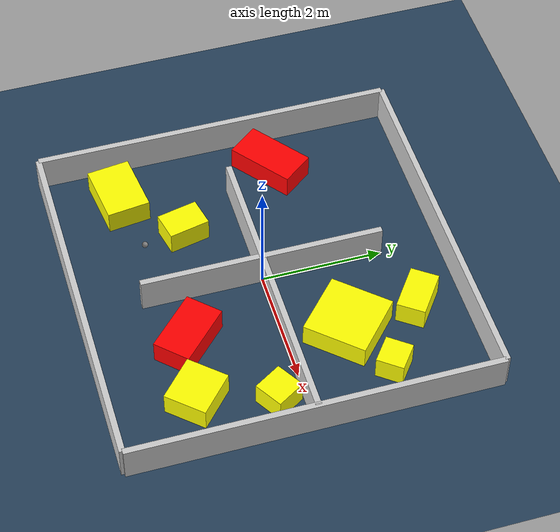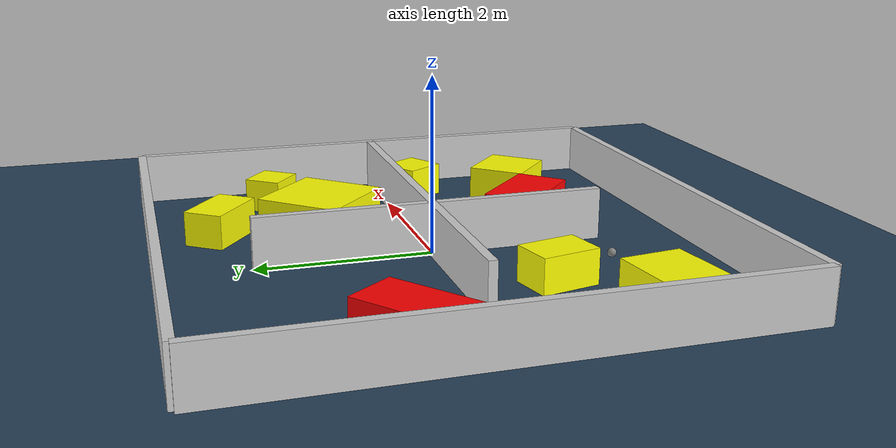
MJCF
<?xml version="1.0" ?>
<mujoco model="generated_environment">
  <option timestep="0.01" integrator="RK4" cone="elliptic"/>
  <default>
    <geom density="1"/>
  </default>
  <asset>
    <texture builtin="gradient" height="3072" rgb1="0.3 0.5 0.7" rgb2="0 0 0" type="skybox" width="512"/>
    <texture builtin="checker" height="300" mark="edge" markrgb="0.8 0.8 0.8" name="groundplane" rgb1="0.2 0.3 0.4" rgb2="0.1 0.2 0.3" type="2d" width="300"/>
    <material name="groundplane" reflectance="0.2" texrepeat="5 5" texture="groundplane" texuniform="true"/>
    <material name="robot" rgba="0.0 1.0 0.0 1"/>
  </asset>
  <worldbody>
    <light dir="0 0 -1" directional="true" pos="0 0 1.5"/>
    <geom condim="4" friction="1.0 0.005 0.001" material="groundplane" name="floor" size="0 0 0.05" type="plane"/>
    <body name="walls">
      <geom name="wall_1" condim="4" pos="-3.0 0.0 0.3" rgba="0.800000011920929 0.800000011920929 0.800000011920929 1.0" size="0.05 3.0 0.3" type="box"/>
      <geom name="wall_2" condim="4" pos="3.0 0.0 0.3" rgba="0.800000011920929 0.800000011920929 0.800000011920929 1.0" size="0.05 3.0 0.3" type="box"/>
      <geom name="wall_3" condim="4" pos="0.0 -3.0 0.3" rgba="0.800000011920929 0.800000011920929 0.800000011920929 1.0" size="3.0 0.05 0.3" type="box"/>
      <geom name="wall_4" condim="4" pos="0.0 3.0 0.3" rgba="0.800000011920929 0.800000011920929 0.800000011920929 1.0" size="3.0 0.05 0.3" type="box"/>
      <geom name="wall_5" condim="4" pos="1.5 0.0 0.3" rgba="0.800000011920929 0.800000011920929 0.800000011920929 1.0" size="1.5 0.05 0.3" type="box"/>
      <geom name="wall_6" condim="4" pos="-1.0 0.0 0.3" rgba="0.800000011920929 0.800000011920929 0.800000011920929 1.0" size="1.0 0.05 0.3" type="box"/>
      <geom name="wall_7" condim="4" pos="0.0 -1.0 0.3" rgba="0.800000011920929 0.800000011920929 0.800000011920929 1.0" size="0.05 1.0 0.3" type="box"/>
      <geom name="wall_8" condim="4" pos="0.0 1.0 0.3" rgba="0.800000011920929 0.800000011920929 0.800000011920929 1.0" size="0.05 1.0 0.3" type="box"/>
    </body>
    <body name="robot">
      <joint name="joint_x" type="slide" pos="0 0 0" axis="1 0 0"/>
      <joint name="joint_y" type="slide" pos="0 0 0" axis="0 1 0"/>
      <geom name="robot" type="sphere" pos="-1.0728260664053644 -1.6741415351391964 0.2" size="0.05" mass="5." friction="1.0 0.005 0.0001" condim="4"/>
      <site name="sensor_ball"/>
    </body>
    <body name="obstacle_1_movable">
      <geom name="obstacle_1_movable" condim="4" pos="2.361526985876295 -0.41983911310323396 0.2" euler="0 0 211.44224166028002" friction="1.0 0.005 0.001" rgba="1 1 0 1" size="0.2503939712224566 0.25583907916847115 0.2" type="box" mass="0.1"/>
      <joint type="free"/>
    </body>
    <body name="obstacle_2_static">
      <geom name="obstacle_2_static" condim="4" pos="-2.267246894307216 0.7945604865007083 0.2" euler="0 0 307.7410330508264" friction="1.0 0.005 0.001" rgba="1 0 0 1" size="0.30878530014607464 0.577536490967077 0.2" type="box"/>
    </body>
    <body name="obstacle_3_movable">
      <geom name="obstacle_3_movable" condim="4" pos="1.2080706537285364 2.2056757467386676 0.2" euler="0 0 233.9279996134042" friction="1.0 0.005 0.001" rgba="1 1 0 1" size="0.23561670923505243 0.3906440324768068 0.2" type="box" mass="0.1"/>
      <joint type="free"/>
    </body>
    <body name="obstacle_4_movable">
      <geom name="obstacle_4_movable" condim="4" pos="2.26973008334232 1.4575879294057104 0.2" euler="0 0 232.4296211844064" friction="1.0 0.005 0.001" rgba="1 1 0 1" size="0.22553300019924186 0.2395334876125999 0.2" type="box" mass="0.1"/>
      <joint type="free"/>
    </body>
    <body name="obstacle_5_movable">
      <geom name="obstacle_5_movable" condim="4" pos="2.022408042002813 -1.6295527559195035 0.2" euler="0 0 317.9637861527124" friction="1.0 0.005 0.001" rgba="1 1 0 1" size="0.3881513296814893 0.3541233103007257 0.2" type="box" mass="0.1"/>
      <joint type="free"/>
    </body>
    <body name="obstacle_6_movable">
      <geom name="obstacle_6_movable" condim="4" pos="-1.2662959043341946 -0.9773572997807982 0.2" euler="0 0 282.347333059707" friction="1.0 0.005 0.001" rgba="1 1 0 1" size="0.34377535656185954 0.24399582090616767 0.2" type="box" mass="0.1"/>
      <joint type="free"/>
    </body>
    <body name="obstacle_7_static">
      <geom name="obstacle_7_static" condim="4" pos="0.9130501023683828 -1.4693957062708713 0.2" euler="0 0 315.9760941716419" friction="1.0 0.005 0.001" rgba="1 0 0 1" size="0.5296603148740923 0.3138153171100308 0.2" type="box"/>
    </body>
    <body name="obstacle_8_movable">
      <geom name="obstacle_8_movable" condim="4" pos="-2.224778833501999 -1.837478629995032 0.2" euler="0 0 277.18166803728735" friction="1.0 0.005 0.001" rgba="1 1 0 1" size="0.3574565846811383 0.5052752314876692 0.2" type="box" mass="0.1"/>
      <joint type="free"/>
    </body>
    <body name="obstacle_9_movable">
      <geom name="obstacle_9_movable" condim="4" pos="1.3590475983405956 1.001350906983995 0.2" euler="0 0 137.80047042534" friction="1.0 0.005 0.001" rgba="1 1 0 1" size="0.5386771373874091 0.5284662655944592 0.2" type="box" mass="0.1"/>
      <joint type="free"/>
    </body>
  </worldbody>
  <actuator>
    <motor name="actuator_x" joint="joint_x" gear="1" ctrlrange="-1 1"/>
    <motor name="actuator_y" joint="joint_y" gear="1" ctrlrange="-1 1"/>
  </actuator>
</mujoco>
